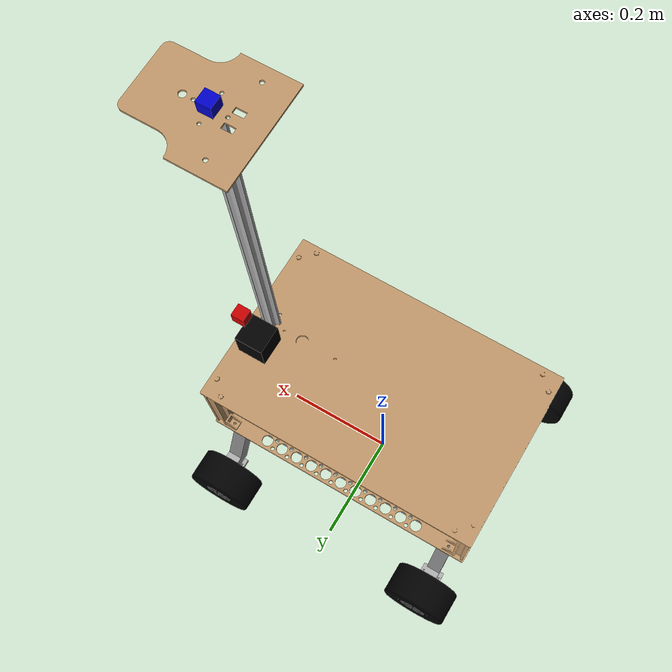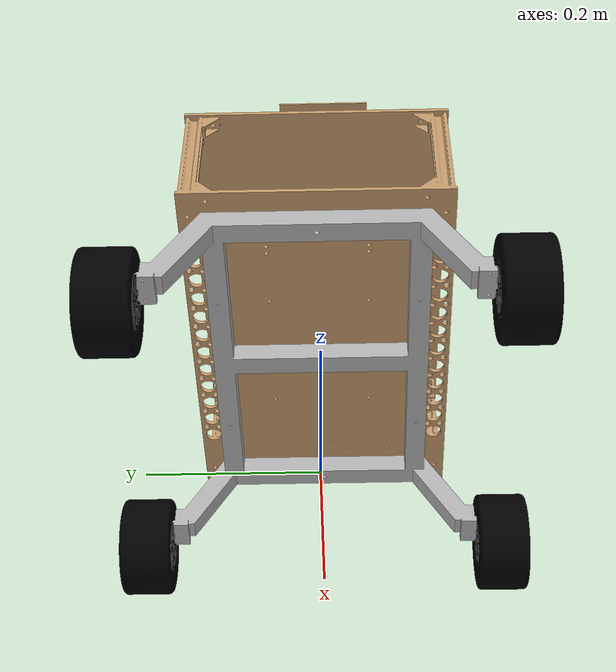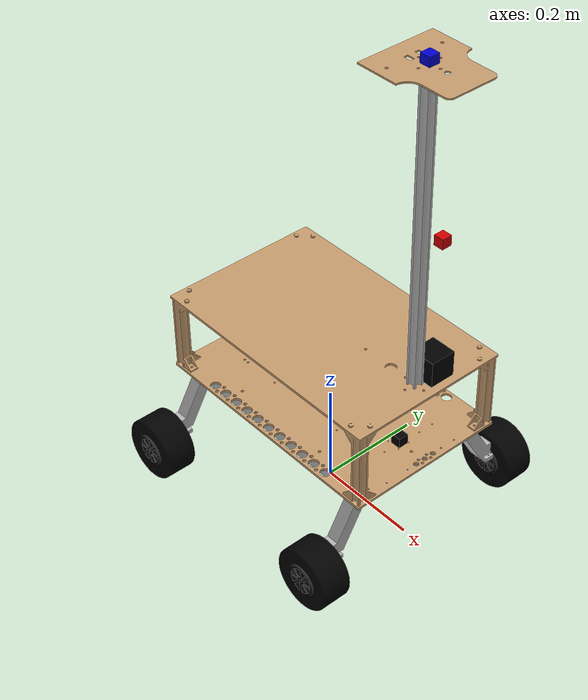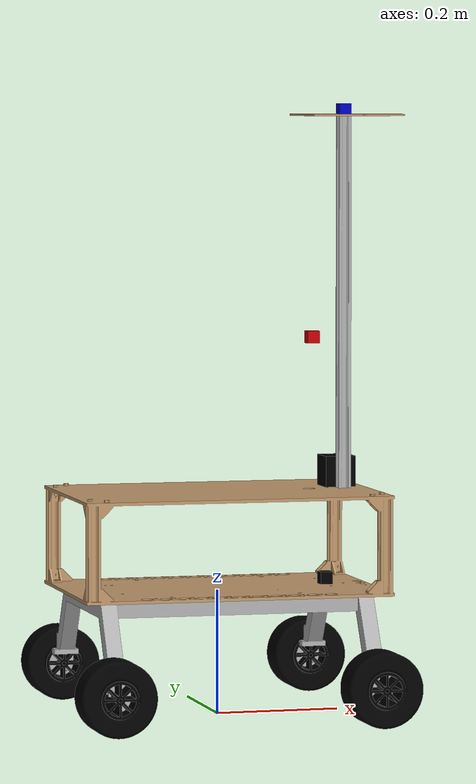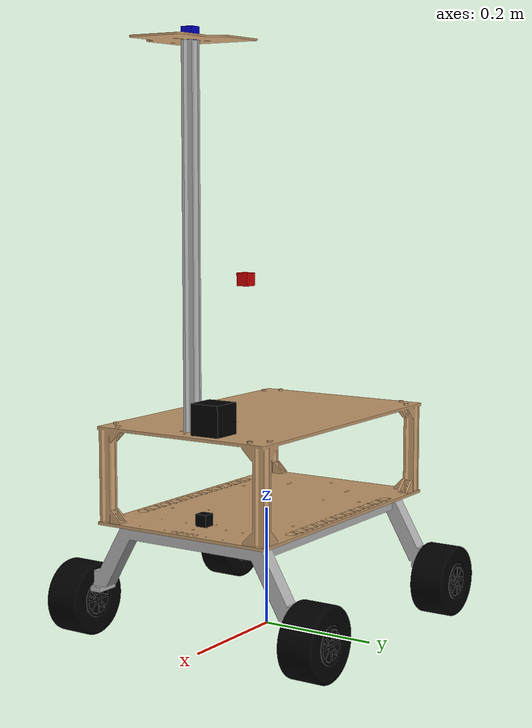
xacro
<?xml version="1.0"?>
<robot xmlns:xacro="http://www.ros.org/wiki/xacro" name="robot_name">

  <!--  variables -->

    <!-- Arguments-->
    <xacro:arg name="use_sim" default="false" />
    <xacro:property name="use_sim" value="$(arg use_sim)" />

    <xacro:include filename="$(find agro_description)/urdf/xacro/wheel.xacro"/>
    <xacro:include filename="$(find agro_description)/urdf/xacro/gazebo.xacro"/>
    <xacro:include filename="$(find agro_description)/urdf/xacro/sensors.xacro"/>
    <xacro:include filename="$(find agro_description)/urdf/xacro/chassis.xacro"/>
    <xacro:include filename="$(find agro_description)/urdf/xacro/ros2_control.xacro"/>

     <!-- Base footprint-->
    <link name= "base_footprint">
    </link>

    <!-- Chassis -->
    <xacro:chassis/>

    <!-- Soporte -->
   <xacro:soporte/>

    <!-- Box -->
   <!--xacro:box/-->

    <!-- Soporte -->
   <xacro:head/>

    <!-- Wheels-->
    <xacro:wheel_link prefix="front_left" />
    <xacro:wheel_link prefix="front_right" />
    <xacro:wheel_link prefix="near_left" />
    <xacro:wheel_link prefix="near_right" />

    <xacro:wheel_joint prefix="front_left" x="0.210" y="0.224" z="-0.1376"/>
    <xacro:wheel_joint prefix="front_right" x="0.210" y="-0.224" z="-0.1376"/>
    <xacro:wheel_joint prefix="near_left" x="-0.210" y="0.224" z="-0.1376"/>
    <xacro:wheel_joint prefix="near_right" x="-0.219" y="-0.224" z="-0.1376"/>

    <!-- camera sensor-->
    <xacro:camera_sensor/>

    <!-- imu sensor-->
    <xacro:imu_sensor/>

    <!-- gps sensor-->
    <xacro:gps/>

    <!-- lidar sensor-->
    <xacro:lidar_sensor/>

    <!-- ros2 control-->
    <xacro:ros2_control_gazebo use_sim="$(arg use_sim)"/>
    <xacro:agro_robot_ros2_control use_sim="$(arg use_sim)"/>

    <!-- gazebo-->
    <xacro:plugins_gazebo use_sim="$(arg use_sim)"/>

</robot>

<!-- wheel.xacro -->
<robot xmlns:xacro="http://www.ros.org/wiki/xacro" name="robot_name">

    <xacro:include filename="$(find agro_description)/urdf/xacro/inertial.xacro"/>
    <xacro:include filename="$(find agro_description)/urdf/xacro/properties.xacro"/>

    <xacro:macro name="wheel_link" params="prefix">
     <link name="${prefix}_wheel">

        <visual name="">
            <origin xyz="0.0 0.0 0.0" rpy="1.57 0.0 0.0"/>
            <geometry>
                <mesh filename="file://$(find agro_description)/mesh/rueda.stl" scale="0.001 0.001 0.001"/>
            </geometry>
            <material name="material_wheel">
                <color rgba="0.0 0.0 0.0 1.0"/>
            </material>
        </visual>

        <xacro:inertial_cylinder mass="${wheel_mass}" length="${wheel_length}" radius="${wheel_radius}">
            <origin xyz="0.0 0 0" rpy="1.57  0 0"/>
        </xacro:inertial_cylinder>

        <collision>
            <origin xyz="0.0 0.0 0.0" rpy="1.57  0.0 0.0"/>
            <geometry>
                <cylinder radius="${wheel_radius}" length="${wheel_length}"/>
            </geometry>
        </collision>
     </link>
    </xacro:macro>

    <xacro:macro name="wheel_joint" params="prefix x y z">
     <joint name="${prefix}_joint" type="continuous">
        <origin xyz="${x} ${y} ${z}" rpy="0.0 0.0 0.0"/>
        <parent link="base_link"/>
        <child link="${prefix}_wheel"/>
        <axis xyz="0.0 1.0 0.0"/>
        <limit effort="1.5" velocity="30.0" />
        <dynamics damping="0.001" friction="0.001" />
     </joint>
    </xacro:macro>

</robot>

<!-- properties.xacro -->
<robot xmlns:xacro="http://www.ros.org/wiki/xacro" >

    <!-- sizes-->
    <xacro:property name="wheel_radius" value="0.0601" />
    <xacro:property name="wheel_length" value="0.0615" />
    <xacro:property name="wheel_mass" value="0.4" />

    <xacro:property name="base_altura" value="0.16" />
    <xacro:property name="base_largo" value="0.5" />
    <xacro:property name="base_ancho" value="0.320" />
    <xacro:property name="base_mass" value="0.2" />

    <xacro:property name="chassis_altura" value="0.1596" />
    <xacro:property name="chassis_largo" value="0.46" />
    <xacro:property name="chassis_ancho" value="0.44" />
    <xacro:property name="chassis_mass" value="2.0" />

    <xacro:property name="soporte_altura" value="0.6" />
    <xacro:property name="soporte_largo" value="0.02" />
    <xacro:property name="soporte_ancho" value="0.02" />
    <xacro:property name="soporte_mass" value="0.1" />

    <xacro:property name="base_camara_altura" value="0.003" />
    <xacro:property name="base_camara_largo" value="0.16" />
    <xacro:property name="base_camara_ancho" value="0.15" />
    <xacro:property name="base_camara_mass" value="0.05" />

    <xacro:property name="imu_altura" value="0.02" />
    <xacro:property name="imu_largo" value="0.02" />
    <xacro:property name="imu_ancho" value="0.02" />
    <xacro:property name="imu_mass" value="0.001" />

    <xacro:property name="gps_altura" value="0.02" />
    <xacro:property name="gps_largo" value="0.02" />
    <xacro:property name="gps_ancho" value="0.02" />
    <xacro:property name="gps_mass" value="0.001" />

    <xacro:property name="lidar_altura" value="0.05" />
    <xacro:property name="lidar_largo" value="0.05" />
    <xacro:property name="lidar_ancho" value="0.05" />
    <xacro:property name="lidar_mass" value="0.001" />

    <xacro:property name="box_altura" value="0.2" />
    <xacro:property name="box_largo" value="0.02" />
    <xacro:property name="box_ancho" value="0.02" />
    <xacro:property name="box_mass" value="0.3" />

    <xacro:property name="camara_altura" value="0.02" />
    <xacro:property name="camara_largo" value="0.02" />
    <xacro:property name="camara_ancho" value="0.02" />
    <xacro:property name="camara_mass" value="0.001" />
</robot>

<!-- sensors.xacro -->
<robot xmlns:xacro="http://www.ros.org/wiki/xacro" >

    <xacro:include filename="$(find agro_description)/urdf/xacro/properties.xacro"/>
    <xacro:include filename="$(find agro_description)/urdf/xacro/inertial.xacro"/>

    <!-- camera -->
    <xacro:macro name="camera_sensor">
        <link name="camera_link">
           <visual>
                <origin xyz="0.0 0.0 0.0" rpy="0.0 0.0 0.0"/>
                <geometry>
                    <box size="${camara_largo} ${camara_ancho} ${camara_altura}"/>
                </geometry>
                <material name="red">
                    <color rgba="0.8 0.0 0.0 1.0"/> <!-- Color madera -->
                </material>
            </visual>
            <xacro:inertial_box mass="${camara_mass}" x="${camara_largo}" y="${camara_ancho}" z="${camara_altura}">
                <origin xyz="0.01 0.0 0.0015" rpy="0.0 0.0 0.0"/>
            </xacro:inertial_box>
            <collision>
                <origin xyz="0.01 0.0 0.0015" rpy="0.0 0.0 0.0"/>
                <geometry>
                    <box size="${camara_largo} ${camara_ancho} ${camara_altura}"/>
                </geometry>
            </collision>
        </link>

        <joint name="base_camera_joint" type="fixed">
            <origin xyz="0.18 0.08 0.40" rpy="0.0 0.0 1.57079632679"/>
            <parent link="base_link"/>
            <child link="camera_link"/>

        </joint>
    </xacro:macro>

    <!-- Imu -->
    <xacro:macro name="imu_sensor">
        <link name="imu_link">
            <visual>
                <origin xyz="0.0 0.0 0.0" rpy="0.0 0.0 0.0"/>
                <geometry>
                    <box size="${imu_largo} ${imu_ancho} ${imu_altura}"/>
                </geometry>
                <material name="black">
                    <color rgba="0.0 0.0 0.0 1.0"/>
                </material>
            </visual>
            <xacro:inertial_box mass="${imu_mass}" x="${imu_largo}" y="${imu_ancho}" z="${imu_altura}">
                <origin xyz="0.01 0.0 0.0015" rpy="0.0 0.0 0.0"/>
            </xacro:inertial_box>
            <collision>
                <origin xyz="0.01 0.0 0.0015" rpy="0.0 0.0 0.0"/>
                <geometry>
                    <box size="${imu_largo} ${imu_ancho} ${imu_altura}"/>
                </geometry>
            </collision>
        </link>

        <joint name="base_imu_joint" type="fixed">
            <origin xyz="0.18 0.0 0.015" rpy="0.0 0.0 0.0"/>
            <parent link="base_link"/>
            <child link="imu_link"/>
        </joint>
    </xacro:macro>

    <!-- GPS -->
    <xacro:macro name="gps">
        <link name="gps_link">
            <visual>
                <origin xyz="0.0 0.0 0.0" rpy="0.0 0.0 0.0"/>
                <geometry>
                    <box size="${gps_largo} ${gps_ancho} ${gps_altura}"/>
                </geometry>
                <material name="blue">
                    <color rgba="0.0 0.0 0.8 1.0"/> <!-- Color madera -->
                </material>
            </visual>
            <xacro:inertial_box mass="${gps_mass}" x="${gps_largo}" y="${gps_ancho}" z="${gps_altura}">
                <origin xyz="0.01 0.0 0.0015" rpy="0.0 0.0 0.0"/>
            </xacro:inertial_box>
            <collision>
                <origin xyz="0.01 0.0 0.0015" rpy="0.0 0.0 0.0"/>
                <geometry>
                    <box size="${gps_largo} ${gps_ancho} ${gps_altura}"/>
                </geometry>
            </collision>
        </link>

        <joint name="base_gps_joint" type="fixed">
            <origin xyz="0.21 0.0 0.77" rpy="0.0 0.0 0.0"/>
            <parent link="base_link"/>
            <child link="gps_link"/>
        </joint>
    </xacro:macro>

    <!-- Lidar -->
    <xacro:macro name="lidar_sensor">
        <link name="laser_link">
            <visual>
                <origin xyz="0.0 0.0 0.0" rpy="0.0 0.0 0.0"/>
                <geometry>
                    <box size="${lidar_largo} ${lidar_ancho} ${lidar_altura}"/>
                </geometry>
                <material name="black">
                    <color rgba="0.0 0.0 0.0 1.0"/> <!-- Color madera -->
                </material>
            </visual>
            <xacro:inertial_box mass="${lidar_mass}" x="${lidar_largo}" y="${lidar_ancho}" z="${lidar_altura}">
                <origin xyz="0.01 0.0 0.0015" rpy="0.0 0.0 0.0"/>
            </xacro:inertial_box>
            <collision>
                <origin xyz="0.01 0.0 0.0015" rpy="0.0 0.0 0.0"/>
                <geometry>
                    <box size="${lidar_largo} ${lidar_ancho} ${lidar_altura}"/>
                </geometry>
            </collision>
        </link>

        <joint name="base_lidar_joint" type="fixed">
            <origin xyz="0.21 0.04 0.185" rpy="0.0 0.0 0.0"/>
            <parent link="base_link"/>
            <child link="laser_link"/>
        </joint>
    </xacro:macro>

</robot>

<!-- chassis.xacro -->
<robot xmlns:xacro="http://www.ros.org/wiki/xacro" >

    <xacro:include filename="$(find agro_description)/urdf/xacro/properties.xacro"/>
    <xacro:include filename="$(find agro_description)/urdf/xacro/inertial.xacro"/>

    <!-- Chassis-->
    <xacro:macro name="chassis">

        <link name="base_link">
            <visual>
                <origin xyz="0.0 0.0 0.0" rpy="0.0 0.0 0.0"/>
                <geometry>
                    <!--box size="0.5 0.316 0.16"/-->
                    <mesh filename="file://$(find agro_description)/mesh/base.stl" scale="0.001 0.001 0.001"/>
                </geometry>
                <material name="wood">
                    <color rgba="0.76 0.60 0.42 1.0"/> <!-- Color madera -->
                </material>
            </visual>
            <xacro:inertial_box mass="${base_mass}" x="${base_largo}" y="${base_ancho}" z="${base_altura}">
                <!--origin xyz="0.0 0.0 ${(base_altura)/2}" rpy="0.0 0.0 0.0"/-->
                <origin xyz="0.0 0.0 0.0" rpy="0.0 0.0 0.0"/>
            </xacro:inertial_box>
            <collision>
                <origin xyz="0.0 0.0 ${(base_altura)/2}" rpy="0.0 0.0 0.0"/>
                <geometry>
                    <box size="${base_largo} ${base_ancho} ${base_altura}"/>
                </geometry>
            </collision>
        </link>

        <joint name="base_footprint_joint" type="fixed">
            <origin xyz="0.0 0.0 0.2" rpy="0.0 0.0 0.0"/>
            <parent link="base_footprint"/>
            <child link="base_link"/>

        </joint>

        <link name="chassis_link">
            <visual>
                <origin xyz="0.0 0.0 0.0" rpy="0.0 0.0 0.0"/>
                <geometry>
                    <!--box size="0.5 0.316 0.16"/-->
                    <mesh filename="file://$(find agro_description)/mesh/chassis.stl" scale="0.001 0.001 0.001"/>
                </geometry>
                <material name="steel">
                    <color rgba="0.70 0.70 0.70 1.0"/> <!-- Color acero -->
                </material>
            </visual>
            <xacro:inertial_box mass="${chassis_mass}" x="${chassis_largo}" y="${chassis_ancho}" z="${chassis_altura}">
                <!--origin xyz="0.0 0.0 ${-(chassis_altura)/2}" rpy="0.0 0.0 0.0"/-->
                <origin xyz="0.0 0.0 0.0" rpy="0.0 0.0 0.0"/>
            </xacro:inertial_box>
            <collision>
                <origin xyz="0.0 0.0 ${-(chassis_altura)/2}" rpy="0.0 0.0 0.0"/>
                <geometry>
                    <box size="${chassis_largo} ${chassis_ancho} ${chassis_altura}"/>
                </geometry>
            </collision>
        </link>

        <joint name="base_chassis_joint" type="fixed">
            <origin xyz="0.0 0.0 0.0" rpy="0.0 0.0 0.0"/>
            <parent link="base_link"/>
            <child link="chassis_link"/>

        </joint>
    </xacro:macro>

    <!-- Soporte -->
    <xacro:macro name="soporte">

        <link name="soporte_link">
            <visual>
                <origin xyz="0.0 0.0 0.0" rpy="0.0 0.0 0.0"/>
                <geometry>
                    <mesh filename="file://$(find agro_description)/mesh/soporte.stl" scale="0.001 0.001 0.001"/>
                </geometry>
                <material name="steel">
                    <color rgba="0.70 0.70 0.70 1.0"/>
                </material>
            </visual>
            <xacro:inertial_box mass="${soporte_mass}" x="${soporte_largo}" y="${soporte_ancho}" z="${soporte_altura}">
                <origin xyz="0.0 0.0 0.30" rpy="0.0 0.0 0.0"/>
            </xacro:inertial_box>
            <collision>
                <origin xyz="0.0 0.0 0.30" rpy="0.0 0.0 0.0"/>
                <geometry>
                    <box size="${soporte_largo} ${soporte_ancho} ${soporte_altura}"/>
                </geometry>
            </collision>
        </link>

        <joint name="base_soporte_joint" type="fixed">
            <origin xyz="0.21 0.0 0.16" rpy="0.0 0.0 0.0"/>
            <parent link="base_link"/>
            <child link="soporte_link"/>

        </joint>
    </xacro:macro>

    <!-- head -->
    <xacro:macro name="head">

        <link name="head_link">
            <visual>
                <origin xyz="0.0 0.0 0.0" rpy="0.0 0.0 0.0"/>
                <geometry>
                    <mesh filename="file://$(find agro_description)/mesh/base_camara.stl" scale="0.001 0.001 0.001"/>
                </geometry>
                <material name="wood">
                    <color rgba="0.76 0.60 0.42 1.0"/> <!-- Color madera -->
                </material>
            </visual>
            <xacro:inertial_box mass="${base_camara_mass}" x="${base_camara_largo}" y="${base_camara_ancho}" z="${base_camara_altura}">
                <origin xyz="0.01 0.0 0.0015" rpy="0.0 0.0 0.0"/>
            </xacro:inertial_box>
            <collision>
                <origin xyz="0.01 0.0 0.0015" rpy="0.0 0.0 0.0"/>
                <geometry>
                    <box size="${base_camara_largo} ${base_camara_ancho} ${base_camara_altura}"/>
                </geometry>
            </collision>
        </link>

        <joint name="base_head_joint" type="fixed">
            <origin xyz="0.21 0.0 0.76" rpy="0.0 0.0 0.0"/>
            <parent link="base_link"/>
            <child link="head_link"/>

        </joint>

    </xacro:macro>

    <!-- caja equilibrio -->
    <xacro:macro name="box">

        <link name="box_link">
            <visual>
                <origin xyz="0.0 0.0 0.0" rpy="0.0 0.0 0.0"/>
                <geometry>
                    <mesh filename="file://$(find agro_description)/mesh/base_camara.stl" scale="0.001 0.001 0.001"/>
                </geometry>
                <material name="wood">
                    <color rgba="0.76 0.60 0.42 1.0"/> <!-- Color madera -->
                </material>
            </visual>
            <xacro:inertial_box mass="${box_mass}" x="${box_largo}" y="${box_ancho}" z="${box_altura}">
                <origin xyz="0.01 0.0 0.0015" rpy="0.0 0.0 0.0"/>
            </xacro:inertial_box>
            <collision>
                <origin xyz="0.01 0.0 0.0015" rpy="0.0 0.0 0.0"/>
                <geometry>
                    <box size="${box_largo} ${box_ancho} ${box_altura}"/>
                </geometry>
            </collision>
        </link>

        <joint name="base_box_joint" type="fixed">
            <origin xyz="-0.21 0.0 0.76" rpy="0.0 0.0 0.0"/>
            <parent link="base_link"/>
            <child link="box_link"/>

        </joint>

    </xacro:macro>

</robot>
